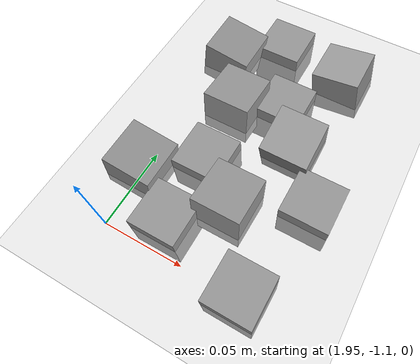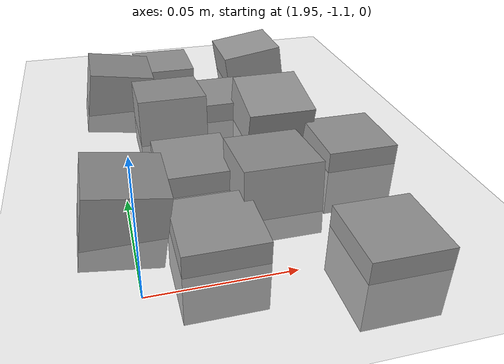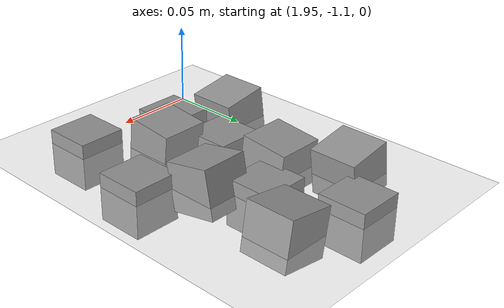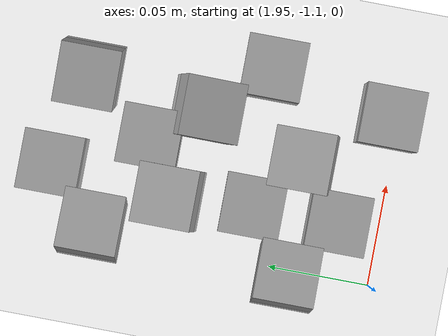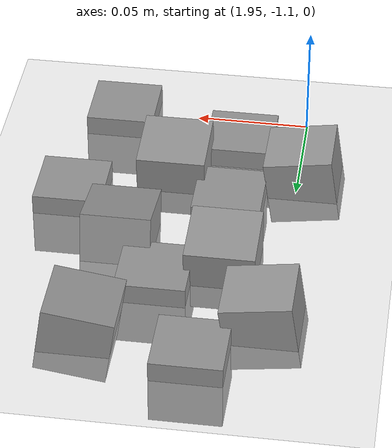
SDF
<sdf version="1.7">
 <world name="default">
  <model name="ground_plane">
   <static>1</static>
   <link name="link">
    <collision name="collision">
     <geometry><plane><normal>0 0 1</normal><size>100 100</size></plane></geometry>
     <surface><friction><ode><mu>100</mu><mu2>50</mu2></ode></friction></surface>
    </collision>
    <visual name="visual">
     <cast_shadows>0</cast_shadows>
     <geometry><plane><normal>0 0 1</normal><size>100 100</size></plane></geometry>
     <material>
      <script><uri>file://media/materials/scripts/gazebo.material</uri><name>Gazebo/Grey</name></script>
     </material>
    </visual>
   </link>
  </model>
  <model name="stone_road_10">
   <link name="link_0_clone_11">
    <inertial>
     <mass>1</mass>
     <inertia>
      <ixx>0.166667</ixx>
      <ixy>0</ixy>
      <ixz>0</ixz>
      <iyy>0.166667</iyy>
      <iyz>0</iyz>
      <izz>0.166667</izz>
     </inertia>
    </inertial>
    <pose>0.007758 0.071496 0.003778 0.2 -0 0</pose>
    <kinematic>1</kinematic>
    <visual name="visual">
     <geometry><box><size>0.03 0.03 0.03</size></box></geometry>
     <material>
      <lighting>1</lighting>
      <script><uri>file://media/materials/scripts/gazebo.material</uri><name>Gazebo/Grey</name></script>
      <shader type="pixel"><normal_map>__default__</normal_map></shader>
      <ambient>0.3 0.3 0.3 1</ambient>
      <diffuse>0.7 0.7 0.7 1</diffuse>
      <specular>0.01 0.01 0.01 1</specular>
      <emissive>0 0 0 1</emissive>
     </material>
    </visual>
    <collision name="collision">
     <geometry><box><size>0.03 0.03 0.03</size></box></geometry>
     <surface>
      <friction>
       <ode><mu>1</mu><mu2>1</mu2><fdir1>0 0 0</fdir1><slip1>0</slip1><slip2>0</slip2></ode>
       <torsional>
        <coefficient>1</coefficient>
        <patch_radius>0</patch_radius>
        <surface_radius>0</surface_radius>
        <use_patch_radius>1</use_patch_radius>
        <ode><slip>0</slip></ode>
       </torsional>
      </friction>
      <bounce><restitution_coefficient>0</restitution_coefficient><threshold>1e+06</threshold></bounce>
      <contact>
       <collide_without_contact>0</collide_without_contact>
       <collide_without_contact_bitmask>1</collide_without_contact_bitmask>
       <collide_bitmask>1</collide_bitmask>
       <ode>
        <soft_cfm>0</soft_cfm>
        <soft_erp>0.2</soft_erp>
        <kp>1e+13</kp>
        <kd>1</kd>
        <max_vel>0.01</max_vel>
        <min_depth>0</min_depth>
       </ode>
       <bullet>
        <split_impulse>1</split_impulse>
        <split_impulse_penetration_threshold>-0.01</split_impulse_penetration_threshold>
        <soft_cfm>0</soft_cfm>
        <soft_erp>0.2</soft_erp>
        <kp>1e+13</kp>
        <kd>1</kd>
       </bullet>
      </contact>
     </surface>
    </collision>
   </link>
   <link name="link_0_clone_2">
    <inertial>
     <mass>1</mass>
     <inertia>
      <ixx>0.166667</ixx>
      <ixy>0</ixy>
      <ixz>0</ixz>
      <iyy>0.166667</iyy>
      <iyz>0</iyz>
      <izz>0.166667</izz>
     </inertia>
    </inertial>
    <pose>-0.065685 0.018139 0.003778 0 0.15 0</pose>
    <kinematic>1</kinematic>
    <visual name="visual">
     <geometry><box><size>0.03 0.03 0.03</size></box></geometry>
     <material>
      <lighting>1</lighting>
      <script><uri>file://media/materials/scripts/gazebo.material</uri><name>Gazebo/Grey</name></script>
      <shader type="pixel"><normal_map>__default__</normal_map></shader>
      <ambient>0.3 0.3 0.3 1</ambient>
      <diffuse>0.7 0.7 0.7 1</diffuse>
      <specular>0.01 0.01 0.01 1</specular>
      <emissive>0 0 0 1</emissive>
     </material>
    </visual>
    <collision name="collision">
     <geometry><box><size>0.03 0.03 0.03</size></box></geometry>
     <surface>
      <friction>
       <ode><mu>1</mu><mu2>1</mu2><fdir1>0 0 0</fdir1><slip1>0</slip1><slip2>0</slip2></ode>
       <torsional>
        <coefficient>1</coefficient>
        <patch_radius>0</patch_radius>
        <surface_radius>0</surface_radius>
        <use_patch_radius>1</use_patch_radius>
        <ode><slip>0</slip></ode>
       </torsional>
      </friction>
      <bounce><restitution_coefficient>0</restitution_coefficient><threshold>1e+06</threshold></bounce>
      <contact>
       <collide_without_contact>0</collide_without_contact>
       <collide_without_contact_bitmask>1</collide_without_contact_bitmask>
       <collide_bitmask>1</collide_bitmask>
       <ode>
        <soft_cfm>0</soft_cfm>
        <soft_erp>0.2</soft_erp>
        <kp>1e+13</kp>
        <kd>1</kd>
        <max_vel>0.01</max_vel>
        <min_depth>0</min_depth>
       </ode>
       <bullet>
        <split_impulse>1</split_impulse>
        <split_impulse_penetration_threshold>-0.01</split_impulse_penetration_threshold>
        <soft_cfm>0</soft_cfm>
        <soft_erp>0.2</soft_erp>
        <kp>1e+13</kp>
        <kd>1</kd>
       </bullet>
      </contact>
     </surface>
    </collision>
   </link>
   <link name="link_0_clone_2_clone_2_clone_13">
    <inertial>
     <mass>1</mass>
     <inertia>
      <ixx>0.166667</ixx>
      <ixy>0</ixy>
      <ixz>0</ixz>
      <iyy>0.166667</iyy>
      <iyz>0</iyz>
      <izz>0.166667</izz>
     </inertia>
    </inertial>
    <pose>0.014407 0.13189 0.003778 0 -0.15 0</pose>
    <kinematic>1</kinematic>
    <visual name="visual">
     <geometry><box><size>0.03 0.03 0.03</size></box></geometry>
     <material>
      <lighting>1</lighting>
      <script><uri>file://media/materials/scripts/gazebo.material</uri><name>Gazebo/Grey</name></script>
      <shader type="pixel"><normal_map>__default__</normal_map></shader>
      <ambient>0.3 0.3 0.3 1</ambient>
      <diffuse>0.7 0.7 0.7 1</diffuse>
      <specular>0.01 0.01 0.01 1</specular>
      <emissive>0 0 0 1</emissive>
     </material>
    </visual>
    <collision name="collision">
     <geometry><box><size>0.03 0.03 0.03</size></box></geometry>
     <surface>
      <friction>
       <ode><mu>1</mu><mu2>1</mu2><fdir1>0 0 0</fdir1><slip1>0</slip1><slip2>0</slip2></ode>
       <torsional>
        <coefficient>1</coefficient>
        <patch_radius>0</patch_radius>
        <surface_radius>0</surface_radius>
        <use_patch_radius>1</use_patch_radius>
        <ode><slip>0</slip></ode>
       </torsional>
      </friction>
      <bounce><restitution_coefficient>0</restitution_coefficient><threshold>1e+06</threshold></bounce>
      <contact>
       <collide_without_contact>0</collide_without_contact>
       <collide_without_contact_bitmask>1</collide_without_contact_bitmask>
       <collide_bitmask>1</collide_bitmask>
       <ode>
        <soft_cfm>0</soft_cfm>
        <soft_erp>0.2</soft_erp>
        <kp>1e+13</kp>
        <kd>1</kd>
        <max_vel>0.01</max_vel>
        <min_depth>0</min_depth>
       </ode>
       <bullet>
        <split_impulse>1</split_impulse>
        <split_impulse_penetration_threshold>-0.01</split_impulse_penetration_threshold>
        <soft_cfm>0</soft_cfm>
        <soft_erp>0.2</soft_erp>
        <kp>1e+13</kp>
        <kd>1</kd>
       </bullet>
      </contact>
     </surface>
    </collision>
   </link>
   <link name="link_0_clone_2_clone_2_clone_13_clone_clone_16_clone_0">
    <inertial>
     <mass>1</mass>
     <inertia>
      <ixx>0.166667</ixx>
      <ixy>0</ixy>
      <ixz>0</ixz>
      <iyy>0.166667</iyy>
      <iyz>0</iyz>
      <izz>0.166667</izz>
     </inertia>
    </inertial>
    <pose>-0.010782 0.09679 -0.006222 0 -0 0</pose>
    <kinematic>1</kinematic>
    <visual name="visual">
     <geometry><box><size>0.03 0.03 0.03</size></box></geometry>
     <material>
      <lighting>1</lighting>
      <script><uri>file://media/materials/scripts/gazebo.material</uri><name>Gazebo/Grey</name></script>
      <shader type="pixel"><normal_map>__default__</normal_map></shader>
      <ambient>0.3 0.3 0.3 1</ambient>
      <diffuse>0.7 0.7 0.7 1</diffuse>
      <specular>0.01 0.01 0.01 1</specular>
      <emissive>0 0 0 1</emissive>
     </material>
    </visual>
    <collision name="collision">
     <geometry><box><size>0.03 0.03 0.03</size></box></geometry>
     <surface>
      <friction>
       <ode><mu>1</mu><mu2>1</mu2><fdir1>0 0 0</fdir1><slip1>0</slip1><slip2>0</slip2></ode>
       <torsional>
        <coefficient>1</coefficient>
        <patch_radius>0</patch_radius>
        <surface_radius>0</surface_radius>
        <use_patch_radius>1</use_patch_radius>
        <ode><slip>0</slip></ode>
       </torsional>
      </friction>
      <bounce><restitution_coefficient>0</restitution_coefficient><threshold>1e+06</threshold></bounce>
      <contact>
       <collide_without_contact>0</collide_without_contact>
       <collide_without_contact_bitmask>1</collide_without_contact_bitmask>
       <collide_bitmask>1</collide_bitmask>
       <ode>
        <soft_cfm>0</soft_cfm>
        <soft_erp>0.2</soft_erp>
        <kp>1e+13</kp>
        <kd>1</kd>
        <max_vel>0.01</max_vel>
        <min_depth>0</min_depth>
       </ode>
       <bullet>
        <split_impulse>1</split_impulse>
        <split_impulse_penetration_threshold>-0.01</split_impulse_penetration_threshold>
        <soft_cfm>0</soft_cfm>
        <soft_erp>0.2</soft_erp>
        <kp>1e+13</kp>
        <kd>1</kd>
       </bullet>
      </contact>
     </surface>
    </collision>
   </link>
   <link name="link_0_clone_2_clone_2_clone_13_clone_clone_16_clone_1">
    <inertial>
     <mass>1</mass>
     <inertia>
      <ixx>0.166667</ixx>
      <ixy>0</ixy>
      <ixz>0</ixz>
      <iyy>0.166667</iyy>
      <iyz>0</iyz>
      <izz>0.166667</izz>
     </inertia>
    </inertial>
    <pose>0.033787 0.042837 -0.006222 0 -0 0</pose>
    <kinematic>1</kinematic>
    <visual name="visual">
     <geometry><box><size>0.03 0.03 0.03</size></box></geometry>
     <material>
      <lighting>1</lighting>
      <script><uri>file://media/materials/scripts/gazebo.material</uri><name>Gazebo/Grey</name></script>
      <shader type="pixel"><normal_map>__default__</normal_map></shader>
      <ambient>0.3 0.3 0.3 1</ambient>
      <diffuse>0.7 0.7 0.7 1</diffuse>
      <specular>0.01 0.01 0.01 1</specular>
      <emissive>0 0 0 1</emissive>
     </material>
    </visual>
    <collision name="collision">
     <geometry><box><size>0.03 0.03 0.03</size></box></geometry>
     <surface>
      <friction>
       <ode><mu>1</mu><mu2>1</mu2><fdir1>0 0 0</fdir1><slip1>0</slip1><slip2>0</slip2></ode>
       <torsional>
        <coefficient>1</coefficient>
        <patch_radius>0</patch_radius>
        <surface_radius>0</surface_radius>
        <use_patch_radius>1</use_patch_radius>
        <ode><slip>0</slip></ode>
       </torsional>
      </friction>
      <bounce><restitution_coefficient>0</restitution_coefficient><threshold>1e+06</threshold></bounce>
      <contact>
       <collide_without_contact>0</collide_without_contact>
       <collide_without_contact_bitmask>1</collide_without_contact_bitmask>
       <collide_bitmask>1</collide_bitmask>
       <ode>
        <soft_cfm>0</soft_cfm>
        <soft_erp>0.2</soft_erp>
        <kp>1e+13</kp>
        <kd>1</kd>
        <max_vel>0.01</max_vel>
        <min_depth>0</min_depth>
       </ode>
       <bullet>
        <split_impulse>1</split_impulse>
        <split_impulse_penetration_threshold>-0.01</split_impulse_penetration_threshold>
        <soft_cfm>0</soft_cfm>
        <soft_erp>0.2</soft_erp>
        <kp>1e+13</kp>
        <kd>1</kd>
       </bullet>
      </contact>
     </surface>
    </collision>
   </link>
   <link name="link_0_clone_2_clone_2_clone_13_clone_clone_16_clone_2">
    <inertial>
     <mass>1</mass>
     <inertia>
      <ixx>0.166667</ixx>
      <ixy>0</ixy>
      <ixz>0</ixz>
      <iyy>0.166667</iyy>
      <iyz>0</iyz>
      <izz>0.166667</izz>
     </inertia>
    </inertial>
    <pose>-0.035128 0.040728 -0.006222 0 -0 0</pose>
    <kinematic>1</kinematic>
    <visual name="visual">
     <geometry><box><size>0.03 0.03 0.03</size></box></geometry>
     <material>
      <lighting>1</lighting>
      <script><uri>file://media/materials/scripts/gazebo.material</uri><name>Gazebo/Grey</name></script>
      <shader type="pixel"><normal_map>__default__</normal_map></shader>
      <ambient>0.3 0.3 0.3 1</ambient>
      <diffuse>0.7 0.7 0.7 1</diffuse>
      <specular>0.01 0.01 0.01 1</specular>
      <emissive>0 0 0 1</emissive>
     </material>
    </visual>
    <collision name="collision">
     <geometry><box><size>0.03 0.03 0.03</size></box></geometry>
     <surface>
      <friction>
       <ode><mu>1</mu><mu2>1</mu2><fdir1>0 0 0</fdir1><slip1>0</slip1><slip2>0</slip2></ode>
       <torsional>
        <coefficient>1</coefficient>
        <patch_radius>0</patch_radius>
        <surface_radius>0</surface_radius>
        <use_patch_radius>1</use_patch_radius>
        <ode><slip>0</slip></ode>
       </torsional>
      </friction>
      <bounce><restitution_coefficient>0</restitution_coefficient><threshold>1e+06</threshold></bounce>
      <contact>
       <collide_without_contact>0</collide_without_contact>
       <collide_without_contact_bitmask>1</collide_without_contact_bitmask>
       <collide_bitmask>1</collide_bitmask>
       <ode>
        <soft_cfm>0</soft_cfm>
        <soft_erp>0.2</soft_erp>
        <kp>1e+13</kp>
        <kd>1</kd>
        <max_vel>0.01</max_vel>
        <min_depth>0</min_depth>
       </ode>
       <bullet>
        <split_impulse>1</split_impulse>
        <split_impulse_penetration_threshold>-0.01</split_impulse_penetration_threshold>
        <soft_cfm>0</soft_cfm>
        <soft_erp>0.2</soft_erp>
        <kp>1e+13</kp>
        <kd>1</kd>
       </bullet>
      </contact>
     </surface>
    </collision>
   </link>
   <link name="link_0_clone_2_clone_2_clone_13_clone_clone_16_clone_21">
    <inertial>
     <mass>1</mass>
     <inertia>
      <ixx>0.166667</ixx>
      <ixy>0</ixy>
      <ixz>0</ixz>
      <iyy>0.166667</iyy>
      <iyz>0</iyz>
      <izz>0.166667</izz>
     </inertia>
    </inertial>
    <pose>-0.032398 0.142589 -0.006222 0 -0 0</pose>
    <kinematic>1</kinematic>
    <visual name="visual">
     <geometry><box><size>0.03 0.03 0.03</size></box></geometry>
     <material>
      <lighting>1</lighting>
      <script><uri>file://media/materials/scripts/gazebo.material</uri><name>Gazebo/Grey</name></script>
      <shader type="pixel"><normal_map>__default__</normal_map></shader>
      <ambient>0.3 0.3 0.3 1</ambient>
      <diffuse>0.7 0.7 0.7 1</diffuse>
      <specular>0.01 0.01 0.01 1</specular>
      <emissive>0 0 0 1</emissive>
     </material>
    </visual>
    <collision name="collision">
     <geometry><box><size>0.03 0.03 0.03</size></box></geometry>
     <surface>
      <friction>
       <ode><mu>1</mu><mu2>1</mu2><fdir1>0 0 0</fdir1><slip1>0</slip1><slip2>0</slip2></ode>
       <torsional>
        <coefficient>1</coefficient>
        <patch_radius>0</patch_radius>
        <surface_radius>0</surface_radius>
        <use_patch_radius>1</use_patch_radius>
        <ode><slip>0</slip></ode>
       </torsional>
      </friction>
      <bounce><restitution_coefficient>0</restitution_coefficient><threshold>1e+06</threshold></bounce>
      <contact>
       <collide_without_contact>0</collide_without_contact>
       <collide_without_contact_bitmask>1</collide_without_contact_bitmask>
       <collide_bitmask>1</collide_bitmask>
       <ode>
        <soft_cfm>0</soft_cfm>
        <soft_erp>0.2</soft_erp>
        <kp>1e+13</kp>
        <kd>1</kd>
        <max_vel>0.01</max_vel>
        <min_depth>0</min_depth>
       </ode>
       <bullet>
        <split_impulse>1</split_impulse>
        <split_impulse_penetration_threshold>-0.01</split_impulse_penetration_threshold>
        <soft_cfm>0</soft_cfm>
        <soft_erp>0.2</soft_erp>
        <kp>1e+13</kp>
        <kd>1</kd>
       </bullet>
      </contact>
     </surface>
    </collision>
   </link>
   <link name="link_0_clone_2_clone_2_clone_13_clone_clone_16_clone_26">
    <inertial>
     <mass>1</mass>
     <inertia>
      <ixx>0.166667</ixx>
      <ixy>0</ixy>
      <ixz>0</ixz>
      <iyy>0.166667</iyy>
      <iyz>0</iyz>
      <izz>0.166667</izz>
     </inertia>
    </inertial>
    <pose>-0.035162 -0.002247 -0.006222 0 -0 0</pose>
    <kinematic>1</kinematic>
    <visual name="visual">
     <geometry><box><size>0.03 0.03 0.03</size></box></geometry>
     <material>
      <lighting>1</lighting>
      <script><uri>file://media/materials/scripts/gazebo.material</uri><name>Gazebo/Grey</name></script>
      <shader type="pixel"><normal_map>__default__</normal_map></shader>
      <ambient>0.3 0.3 0.3 1</ambient>
      <diffuse>0.7 0.7 0.7 1</diffuse>
      <specular>0.01 0.01 0.01 1</specular>
      <emissive>0 0 0 1</emissive>
     </material>
    </visual>
    <collision name="collision">
     <geometry><box><size>0.03 0.03 0.03</size></box></geometry>
     <surface>
      <friction>
       <ode><mu>1</mu><mu2>1</mu2><fdir1>0 0 0</fdir1><slip1>0</slip1><slip2>0</slip2></ode>
       <torsional>
        <coefficient>1</coefficient>
        <patch_radius>0</patch_radius>
        <surface_radius>0</surface_radius>
        <use_patch_radius>1</use_patch_radius>
        <ode><slip>0</slip></ode>
       </torsional>
      </friction>
      <bounce><restitution_coefficient>0</restitution_coefficient><threshold>1e+06</threshold></bounce>
      <contact>
       <collide_without_contact>0</collide_without_contact>
       <collide_without_contact_bitmask>1</collide_without_contact_bitmask>
       <collide_bitmask>1</collide_bitmask>
       <ode>
        <soft_cfm>0</soft_cfm>
        <soft_erp>0.2</soft_erp>
        <kp>1e+13</kp>
        <kd>1</kd>
        <max_vel>0.01</max_vel>
        <min_depth>0</min_depth>
       </ode>
       <bullet>
        <split_impulse>1</split_impulse>
        <split_impulse_penetration_threshold>-0.01</split_impulse_penetration_threshold>
        <soft_cfm>0</soft_cfm>
        <soft_erp>0.2</soft_erp>
        <kp>1e+13</kp>
        <kd>1</kd>
       </bullet>
      </contact>
     </surface>
    </collision>
   </link>
   <link name="link_0_clone_2_clone_2_clone_13_clone_clone_16_clone_6">
    <inertial>
     <mass>1</mass>
     <inertia>
      <ixx>0.166667</ixx>
      <ixy>0</ixy>
      <ixz>0</ixz>
      <iyy>0.166667</iyy>
      <iyz>0</iyz>
      <izz>0.166667</izz>
     </inertia>
    </inertial>
    <pose>0.020774 -0.018727 -0.006222 0 -0 0</pose>
    <kinematic>1</kinematic>
    <visual name="visual">
     <geometry><box><size>0.03 0.03 0.03</size></box></geometry>
     <material>
      <lighting>1</lighting>
      <script><uri>file://media/materials/scripts/gazebo.material</uri><name>Gazebo/Grey</name></script>
      <shader type="pixel"><normal_map>__default__</normal_map></shader>
      <ambient>0.3 0.3 0.3 1</ambient>
      <diffuse>0.7 0.7 0.7 1</diffuse>
      <specular>0.01 0.01 0.01 1</specular>
      <emissive>0 0 0 1</emissive>
     </material>
    </visual>
    <collision name="collision">
     <geometry><box><size>0.03 0.03 0.03</size></box></geometry>
     <surface>
      <friction>
       <ode><mu>1</mu><mu2>1</mu2><fdir1>0 0 0</fdir1><slip1>0</slip1><slip2>0</slip2></ode>
       <torsional>
        <coefficient>1</coefficient>
        <patch_radius>0</patch_radius>
        <surface_radius>0</surface_radius>
        <use_patch_radius>1</use_patch_radius>
        <ode><slip>0</slip></ode>
       </torsional>
      </friction>
      <bounce><restitution_coefficient>0</restitution_coefficient><threshold>1e+06</threshold></bounce>
      <contact>
       <collide_without_contact>0</collide_without_contact>
       <collide_without_contact_bitmask>1</collide_without_contact_bitmask>
       <collide_bitmask>1</collide_bitmask>
       <ode>
        <soft_cfm>0</soft_cfm>
        <soft_erp>0.2</soft_erp>
        <kp>1e+13</kp>
        <kd>1</kd>
        <max_vel>0.01</max_vel>
        <min_depth>0</min_depth>
       </ode>
       <bullet>
        <split_impulse>1</split_impulse>
        <split_impulse_penetration_threshold>-0.01</split_impulse_penetration_threshold>
        <soft_cfm>0</soft_cfm>
        <soft_erp>0.2</soft_erp>
        <kp>1e+13</kp>
        <kd>1</kd>
       </bullet>
      </contact>
     </surface>
    </collision>
   </link>
   <link name="link_0_clone_2_clone_2_clone_13_clone_clone_2">
    <inertial>
     <mass>1</mass>
     <inertia>
      <ixx>0.166667</ixx>
      <ixy>0</ixy>
      <ixz>0</ixz>
      <iyy>0.166667</iyy>
      <iyz>0</iyz>
      <izz>0.166667</izz>
     </inertia>
    </inertial>
    <pose>-0.037997 0.082571 0.003778 -0.1 0 0</pose>
    <kinematic>1</kinematic>
    <visual name="visual">
     <geometry><box><size>0.03 0.03 0.03</size></box></geometry>
     <material>
      <lighting>1</lighting>
      <script><uri>file://media/materials/scripts/gazebo.material</uri><name>Gazebo/Grey</name></script>
      <shader type="pixel"><normal_map>__default__</normal_map></shader>
      <ambient>0.3 0.3 0.3 1</ambient>
      <diffuse>0.7 0.7 0.7 1</diffuse>
      <specular>0.01 0.01 0.01 1</specular>
      <emissive>0 0 0 1</emissive>
     </material>
    </visual>
    <collision name="collision">
     <geometry><box><size>0.03 0.03 0.03</size></box></geometry>
     <surface>
      <friction>
       <ode><mu>1</mu><mu2>1</mu2><fdir1>0 0 0</fdir1><slip1>0</slip1><slip2>0</slip2></ode>
       <torsional>
        <coefficient>1</coefficient>
        <patch_radius>0</patch_radius>
        <surface_radius>0</surface_radius>
        <use_patch_radius>1</use_patch_radius>
        <ode><slip>0</slip></ode>
       </torsional>
      </friction>
      <bounce><restitution_coefficient>0</restitution_coefficient><threshold>1e+06</threshold></bounce>
      <contact>
       <collide_without_contact>0</collide_without_contact>
       <collide_without_contact_bitmask>1</collide_without_contact_bitmask>
       <collide_bitmask>1</collide_bitmask>
       <ode>
        <soft_cfm>0</soft_cfm>
        <soft_erp>0.2</soft_erp>
        <kp>1e+13</kp>
        <kd>1</kd>
        <max_vel>0.01</max_vel>
        <min_depth>0</min_depth>
       </ode>
       <bullet>
        <split_impulse>1</split_impulse>
        <split_impulse_penetration_threshold>-0.01</split_impulse_penetration_threshold>
        <soft_cfm>0</soft_cfm>
        <soft_erp>0.2</soft_erp>
        <kp>1e+13</kp>
        <kd>1</kd>
       </bullet>
      </contact>
     </surface>
    </collision>
   </link>
   <link name="link_0_clone_2_clone_2_clone_13_clone_clone_3">
    <inertial>
     <mass>1</mass>
     <inertia>
      <ixx>0.166667</ixx>
      <ixy>0</ixy>
      <ixz>0</ixz>
      <iyy>0.166667</iyy>
      <iyz>0</iyz>
      <izz>0.166667</izz>
     </inertia>
    </inertial>
    <pose>-0.008408 0.020239 0.003778 -0.1 0 0</pose>
    <kinematic>1</kinematic>
    <visual name="visual">
     <geometry><box><size>0.03 0.03 0.03</size></box></geometry>
     <material>
      <lighting>1</lighting>
      <script><uri>file://media/materials/scripts/gazebo.material</uri><name>Gazebo/Grey</name></script>
      <shader type="pixel"><normal_map>__default__</normal_map></shader>
      <ambient>0.3 0.3 0.3 1</ambient>
      <diffuse>0.7 0.7 0.7 1</diffuse>
      <specular>0.01 0.01 0.01 1</specular>
      <emissive>0 0 0 1</emissive>
     </material>
    </visual>
    <collision name="collision">
     <geometry><box><size>0.03 0.03 0.03</size></box></geometry>
     <surface>
      <friction>
       <ode><mu>1</mu><mu2>1</mu2><fdir1>0 0 0</fdir1><slip1>0</slip1><slip2>0</slip2></ode>
       <torsional>
        <coefficient>1</coefficient>
        <patch_radius>0</patch_radius>
        <surface_radius>0</surface_radius>
        <use_patch_radius>1</use_patch_radius>
        <ode><slip>0</slip></ode>
       </torsional>
      </friction>
      <bounce><restitution_coefficient>0</restitution_coefficient><threshold>1e+06</threshold></bounce>
      <contact>
       <collide_without_contact>0</collide_without_contact>
       <collide_without_contact_bitmask>1</collide_without_contact_bitmask>
       <collide_bitmask>1</collide_bitmask>
       <ode>
        <soft_cfm>0</soft_cfm>
        <soft_erp>0.2</soft_erp>
        <kp>1e+13</kp>
        <kd>1</kd>
        <max_vel>0.01</max_vel>
        <min_depth>0</min_depth>
       </ode>
       <bullet>
        <split_impulse>1</split_impulse>
        <split_impulse_penetration_threshold>-0.01</split_impulse_penetration_threshold>
        <soft_cfm>0</soft_cfm>
        <soft_erp>0.2</soft_erp>
        <kp>1e+13</kp>
        <kd>1</kd>
       </bullet>
      </contact>
     </surface>
    </collision>
   </link>
   <link name="link_0_clone_2_clone_3">
    <inertial>
     <mass>1</mass>
     <inertia>
      <ixx>0.166667</ixx>
      <ixy>0</ixy>
      <ixz>0</ixz>
      <iyy>0.166667</iyy>
      <iyz>0</iyz>
      <izz>0.166667</izz>
     </inertia>
    </inertial>
    <pose>-0.058921 0.117271 0.003778 0 0.15 0</pose>
    <kinematic>1</kinematic>
    <visual name="visual">
     <geometry><box><size>0.03 0.03 0.03</size></box></geometry>
     <material>
      <lighting>1</lighting>
      <script><uri>file://media/materials/scripts/gazebo.material</uri><name>Gazebo/Grey</name></script>
      <shader type="pixel"><normal_map>__default__</normal_map></shader>
      <ambient>0.3 0.3 0.3 1</ambient>
      <diffuse>0.7 0.7 0.7 1</diffuse>
      <specular>0.01 0.01 0.01 1</specular>
      <emissive>0 0 0 1</emissive>
     </material>
    </visual>
    <collision name="collision">
     <geometry><box><size>0.03 0.03 0.03</size></box></geometry>
     <surface>
      <friction>
       <ode><mu>1</mu><mu2>1</mu2><fdir1>0 0 0</fdir1><slip1>0</slip1><slip2>0</slip2></ode>
       <torsional>
        <coefficient>1</coefficient>
        <patch_radius>0</patch_radius>
        <surface_radius>0</surface_radius>
        <use_patch_radius>1</use_patch_radius>
        <ode><slip>0</slip></ode>
       </torsional>
      </friction>
      <bounce><restitution_coefficient>0</restitution_coefficient><threshold>1e+06</threshold></bounce>
      <contact>
       <collide_without_contact>0</collide_without_contact>
       <collide_without_contact_bitmask>1</collide_without_contact_bitmask>
       <collide_bitmask>1</collide_bitmask>
       <ode>
        <soft_cfm>0</soft_cfm>
        <soft_erp>0.2</soft_erp>
        <kp>1e+13</kp>
        <kd>1</kd>
        <max_vel>0.01</max_vel>
        <min_depth>0</min_depth>
       </ode>
       <bullet>
        <split_impulse>1</split_impulse>
        <split_impulse_penetration_threshold>-0.01</split_impulse_penetration_threshold>
        <soft_cfm>0</soft_cfm>
        <soft_erp>0.2</soft_erp>
        <kp>1e+13</kp>
        <kd>1</kd>
       </bullet>
      </contact>
     </surface>
    </collision>
   </link>
   <static>0</static>
   <pose>2.01299 -1.07769 -0 0 -0 0</pose>
  </model>
 </world>
</sdf>
